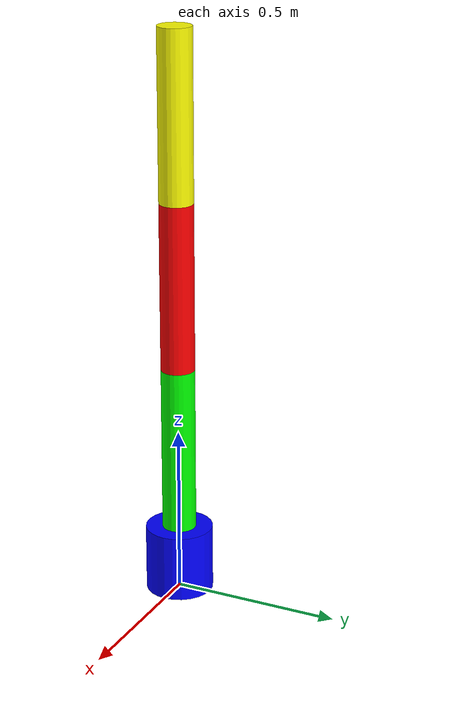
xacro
<?xml version="1.0"?>
<robot name="three_dof_manipulator" xmlns:xacro="http://www.ros.org/wiki/xacro">
  <xacro:include filename="$(find impedance_control)/urdf/gazebo.urdf.xacro"/>
  <xacro:include filename="$(find impedance_control)/urdf/ros2_control.urdf.xacro"/>

  <!-- World -->
  <link name="world"/>

  <!-- World fixed joint -->
  <joint name="world_fixed" type="fixed">
    <origin xyz="0 0 0" rpy="0 0 0"/>
    <parent link="world"/>
    <child link="base_link"/>
  </joint>

  <!-- Base Link -->
  <link name="base_link">
    <visual>
      <origin xyz="0 0 0.1" rpy="0 0 0"/>
      <geometry>
        <cylinder radius="0.1" length="0.2"/>
      </geometry>
      <material name="blue">
        <color rgba="0.0 0.0 1.0 1.0"/>
      </material>
    </visual>
    <collision>
      <origin xyz="0 0 0.1" rpy="0 0 0"/>
      <geometry>
        <cylinder radius="0.1" length="0.2"/>
      </geometry>
    </collision>
    <inertial>
      <mass value="1.0"/>
      <origin xyz="0 0 0.1" rpy="0 0 0"/>
      <inertia ixx="0.005" ixy="0.0" ixz="0.0" iyy="0.005" iyz="0.0" izz="0.005"/>
    </inertial>
  </link>

  <!-- Joint 1 -->
  <joint name="joint1" type="revolute">
    <parent link="base_link"/>
    <child link="link1"/>
    <origin xyz="0 0 0.2" rpy="0 0 0"/>
    <axis xyz="0 0 1"/>
    <limit lower="-3.14" upper="3.14" effort="10.0" velocity="1.0"/>
  </joint>

  <!-- Link 1 -->
  <link name="link1">
    <visual>
      <origin xyz="0 0 0.25" rpy="0 0 0"/>
      <geometry>
        <cylinder radius="0.05" length="0.5"/>
      </geometry>
      <material name="green">
        <color rgba="0.0 1.0 0.0 1.0"/>
      </material>
    </visual>
    <collision>
      <origin xyz="0 0 0.25" rpy="0 0 0"/>
      <geometry>
        <cylinder radius="0.05" length="0.5"/>
      </geometry>
    </collision>
    <inertial>
      <mass value="1.0"/>
      <origin xyz="0 0 0.25" rpy="0 0 0"/>
      <inertia ixx="0.001" ixy="0.0" ixz="0.0" iyy="0.001" iyz="0.0" izz="0.001"/>
    </inertial>
  </link>

  <!-- Joint 2 -->
  <joint name="joint2" type="revolute">
    <parent link="link1"/>
    <child link="link2"/>
    <origin xyz="0 0 0.5" rpy="0 0 0"/>
    <axis xyz="0 1 0"/>
    <limit lower="-3.14" upper="3.14" effort="10.0" velocity="1.0"/>
  </joint>

  <!-- Link 2 -->
  <link name="link2">
    <visual>
      <origin xyz="0 0 0.25" rpy="0 0 0"/>
      <geometry>
        <cylinder radius="0.05" length="0.5"/>
      </geometry>
      <material name="red">
        <color rgba="1.0 0.0 0.0 1.0"/>
      </material>
    </visual>
    <collision>
      <origin xyz="0 0 0.25" rpy="0 0 0"/>
      <geometry>
        <cylinder radius="0.05" length="0.5"/>
      </geometry>
    </collision>
    <inertial>
      <mass value="1.0"/>
      <origin xyz="0 0 0.25" rpy="0 0 0"/>
      <inertia ixx="0.001" ixy="0.0" ixz="0.0" iyy="0.001" iyz="0.0" izz="0.001"/>
    </inertial>
  </link>

  <!-- Joint 3 -->
  <joint name="joint3" type="revolute">
    <parent link="link2"/>
    <child link="link3"/>
    <origin xyz="0 0 0.5" rpy="0 0 0"/>
    <axis xyz="1 0 0"/>
    <limit lower="-3.14" upper="3.14" effort="10.0" velocity="1.0"/>
  </joint>

  <!-- Link 3 -->
  <link name="link3">
    <visual>
      <origin xyz="0 0 0.25" rpy="0 0 0"/>
      <geometry>
        <cylinder radius="0.05" length="0.5"/>
      </geometry>
      <material name="yellow">
        <color rgba="1.0 1.0 0.0 1.0"/>
      </material>
    </visual>
    <collision>
      <origin xyz="0 0 0.25" rpy="0 0 0"/>
      <geometry>
        <cylinder radius="0.05" length="0.5"/>
      </geometry>
    </collision>
    <inertial>
      <mass value="1.0"/>
      <origin xyz="0 0 0.25" rpy="0 0 0"/>
      <inertia ixx="0.001" ixy="0.0" ixz="0.0" iyy="0.001" iyz="0.0" izz="0.001"/>
    </inertial>
  </link>

  <xacro:ros2_control/>
</robot>
